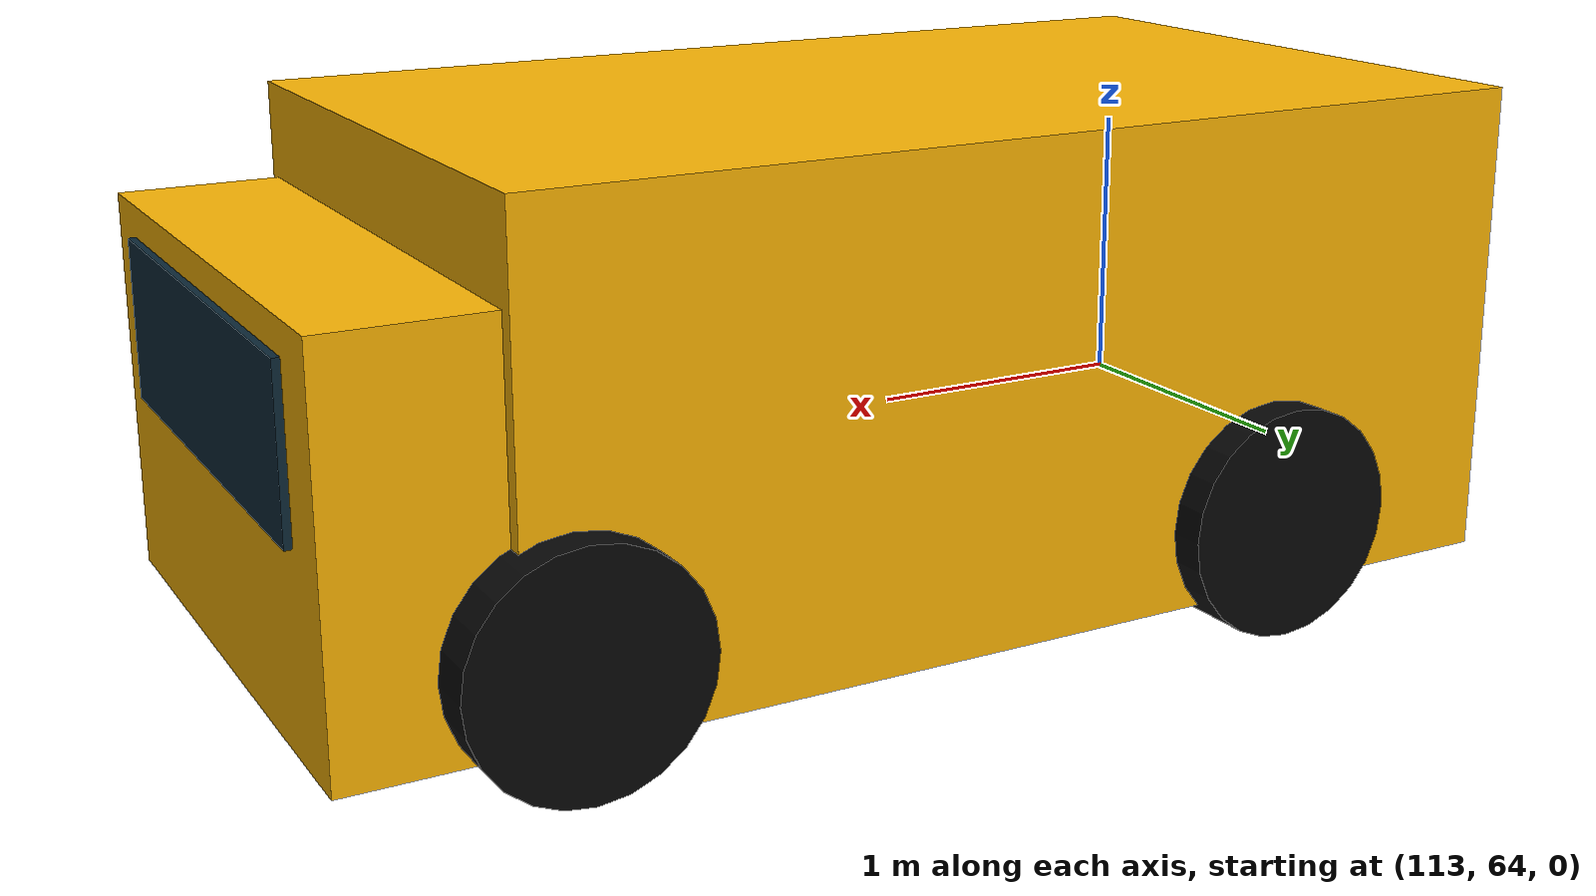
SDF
<sdf version="1.9">
 <world name="gsi_search_world_v2_yungu">
  <physics type="ode">
   <max_step_size>0.004</max_step_size>
   <real_time_factor>1.0</real_time_factor>
   <real_time_update_rate>250</real_time_update_rate>
  </physics>
  <gravity>0 0 -9.8</gravity>
  <scene>
   <grid>false</grid>
   <ambient>0.62 0.62 0.60 1</ambient>
   <background>0.70 0.78 0.84 1</background>
   <shadows>true</shadows>
  </scene>
  <light name="sun" type="directional">
   <pose>160 100 120 0 0 0</pose>
   <intensity>1.0</intensity>
   <direction>-0.3 0.2 -0.9</direction>
   <diffuse>0.95 0.93 0.88 1</diffuse>
   <specular>0.25 0.25 0.25 1</specular>
  </light>
  <spherical_coordinates>
   <surface_model>EARTH_WGS84</surface_model>
   <world_frame_orientation>ENU</world_frame_orientation>
   <latitude_deg>30.334034</latitude_deg>
   <longitude_deg>120.036295</longitude_deg>
   <elevation>0</elevation>
  </spherical_coordinates>
  <model name="ground_collision">
   <static>true</static>
   <link name="link">
    <collision name="ground_south">
     <pose>161.742435 21.239667 -0.100000 0 0 0</pose>
     <geometry><box><size>371.617731 105.432425 0.200000</size></box></geometry>
    </collision>
    <collision name="ground_north">
     <pose>161.742435 166.906986 -0.100000 0 0 0</pose>
     <geometry><box><size>371.617731 131.761925 0.200000</size></box></geometry>
    </collision>
    <collision name="ground_west">
     <pose>42.063956 87.490952 -0.100000 0 0 0</pose>
     <geometry><box><size>132.260775 27.070145 0.200000</size></box></geometry>
    </collision>
    <collision name="ground_east">
     <pose>271.185059 87.490952 -0.100000 0 0 0</pose>
     <geometry><box><size>152.732483 27.070145 0.200000</size></box></geometry>
    </collision>
    <collision name="ground_sunken_plaza">
     <pose>151.506580 87.490952 -8.793441 0 0 0</pose>
     <geometry><box><size>86.624474 27.070145 0.200000</size></box></geometry>
    </collision>
   </link>
  </model>
  <model name="yellow_search_van">
   <static>true</static>
   <pose>115 65 0.8 0 0 0</pose>
   <link name="body">
    <collision name="collision"><geometry><box><size>4 2 1.8</size></box></geometry></collision>
    <visual name="yellow_body">
     <pose>-0.35 0 -0.15 0 0 0</pose>
     <geometry><box><size>3.3 2 1.5</size></box></geometry>
     <material>
      <ambient>1 0.72 0.02 1</ambient>
      <diffuse>1 0.72 0.02 1</diffuse>
      <specular>0.15 0.15 0.08 1</specular>
     </material>
    </visual>
    <visual name="yellow_cab">
     <pose>1.45 0 -0.3 0 0 0</pose>
     <geometry><box><size>0.7 1.9 1.2</size></box></geometry>
     <material><ambient>1 0.72 0.02 1</ambient><diffuse>1 0.72 0.02 1</diffuse></material>
    </visual>
    <visual name="windshield">
     <pose>1.811 0 -0.05 0 0 0</pose>
     <geometry><box><size>0.025 1.5 0.5</size></box></geometry>
     <material><ambient>0.03 0.08 0.12 1</ambient><diffuse>0.05 0.16 0.22 1</diffuse></material>
    </visual>
    <visual name="wheel_fl">
     <pose>1.15 1.0 -0.65 1.570796 0 0</pose>
     <geometry><cylinder><radius>0.36</radius><length>0.22</length></cylinder></geometry>
     <material><ambient>0.02 0.02 0.02 1</ambient><diffuse>0.03 0.03 0.03 1</diffuse></material>
    </visual>
    <visual name="wheel_fr">
     <pose>1.15 -1.0 -0.65 1.570796 0 0</pose>
     <geometry><cylinder><radius>0.36</radius><length>0.22</length></cylinder></geometry>
     <material><ambient>0.02 0.02 0.02 1</ambient><diffuse>0.03 0.03 0.03 1</diffuse></material>
    </visual>
    <visual name="wheel_rl">
     <pose>-1.15 1.0 -0.65 1.570796 0 0</pose>
     <geometry><cylinder><radius>0.36</radius><length>0.22</length></cylinder></geometry>
     <material><ambient>0.02 0.02 0.02 1</ambient><diffuse>0.03 0.03 0.03 1</diffuse></material>
    </visual>
    <visual name="wheel_rr">
     <pose>-1.15 -1.0 -0.65 1.570796 0 0</pose>
     <geometry><cylinder><radius>0.36</radius><length>0.22</length></cylinder></geometry>
     <material><ambient>0.02 0.02 0.02 1</ambient><diffuse>0.03 0.03 0.03 1</diffuse></material>
    </visual>
   </link>
  </model>
 </world>
</sdf>
